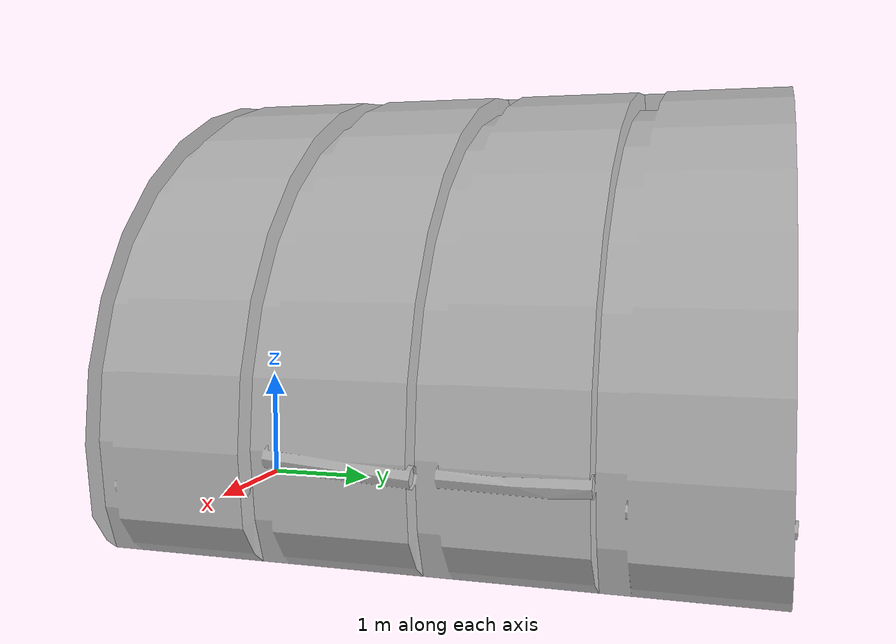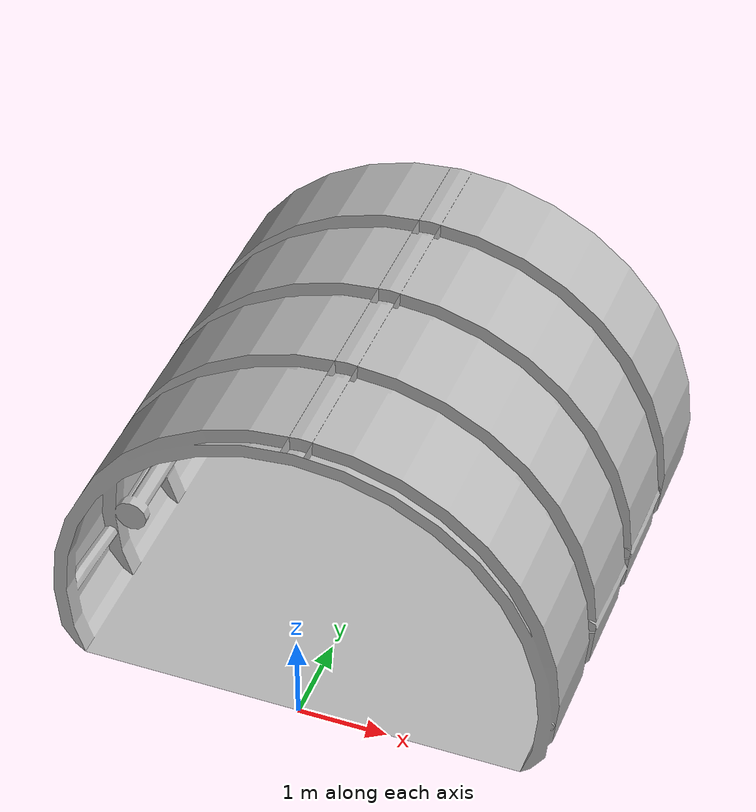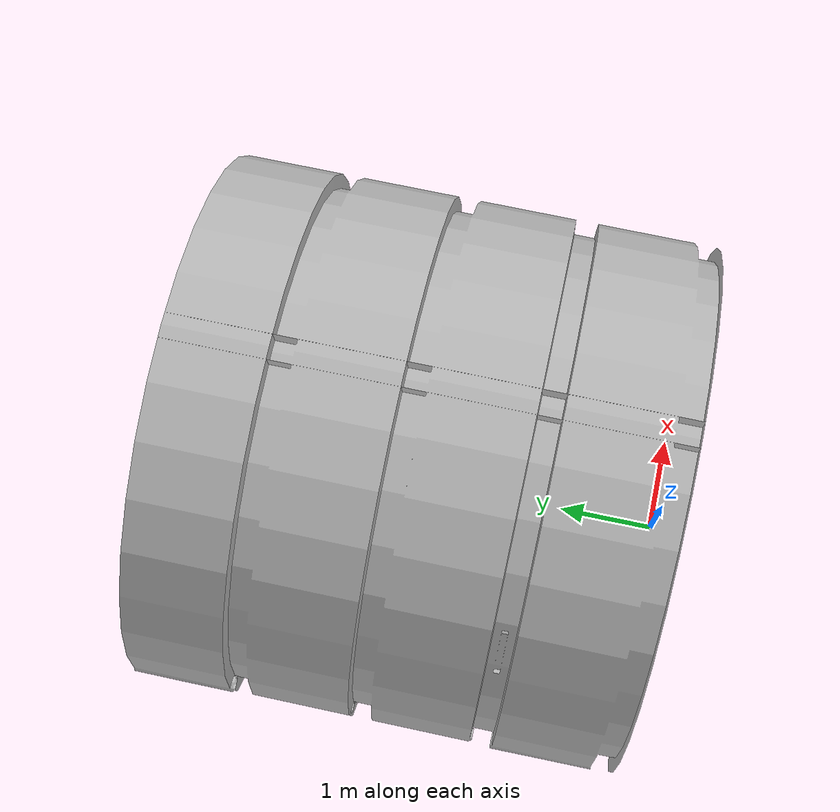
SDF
<?xml version="1.0" ?>
<sdf version="1.6">
  <model name="tunnel_straight">
    <static>true</static>
    <link name="link">
      <collision name="collision">
        <geometry>
          <mesh>
            <scale>0.01 0.01 0.01</scale>
            <uri>model://tunnel_straight/meshes/Tunnel_Straight.obj</uri>
          </mesh>
        </geometry>
      </collision>
      <visual name="visual">
        <geometry>
          <mesh>
            <scale>0.01 0.01 0.01</scale>
            <uri>model://tunnel_straight/meshes/Tunnel_Straight.obj</uri>
          </mesh>
        </geometry>
      </visual>
    </link>
  </model>
</sdf>
